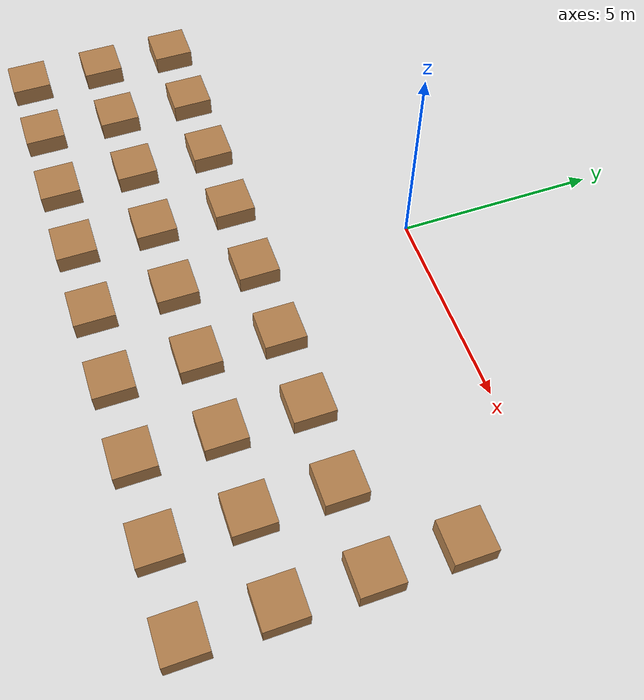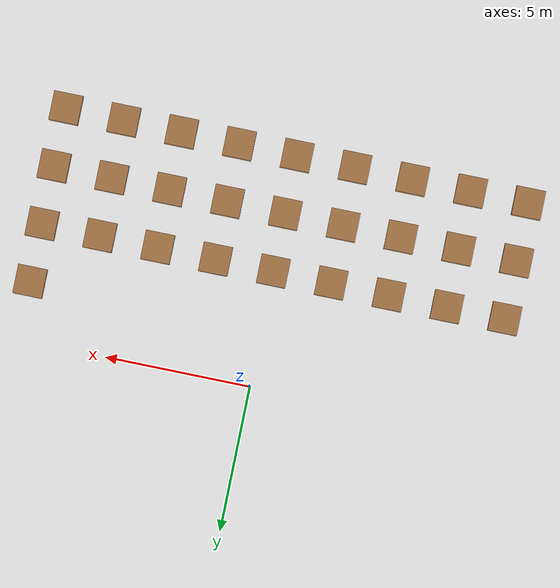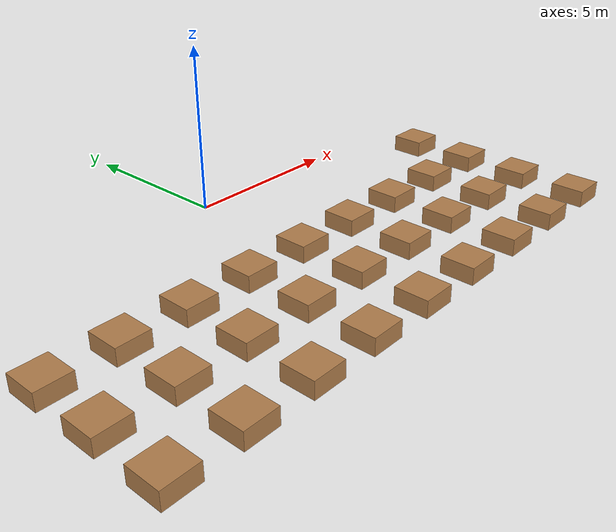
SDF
<sdf version="1.5">
 <model name="clobot_test_map">
  <static>1</static>
  <link name="Box54">
   <collision name="Box54_Collision">
    <pose>8 -2 0.25 0 0 0</pose>
    <geometry><box><size>1 1 0.5</size></box></geometry>
    <surface>
     <friction>
      <ode><mu>1</mu><mu2>1</mu2><fdir1>0 0 0</fdir1><slip1>0</slip1><slip2>0</slip2></ode>
      <torsional>
       <coefficient>1</coefficient>
       <patch_radius>0</patch_radius>
       <surface_radius>0</surface_radius>
       <use_patch_radius>1</use_patch_radius>
       <ode><slip>0</slip></ode>
      </torsional>
     </friction>
     <bounce><restitution_coefficient>0</restitution_coefficient><threshold>1e+06</threshold></bounce>
     <contact>
      <collide_without_contact>0</collide_without_contact>
      <collide_without_contact_bitmask>1</collide_without_contact_bitmask>
      <collide_bitmask>1</collide_bitmask>
      <ode>
       <soft_cfm>0</soft_cfm>
       <soft_erp>0.2</soft_erp>
       <kp>1e+13</kp>
       <kd>1</kd>
       <max_vel>0.01</max_vel>
       <min_depth>0</min_depth>
      </ode>
      <bullet>
       <split_impulse>1</split_impulse>
       <split_impulse_penetration_threshold>-0.01</split_impulse_penetration_threshold>
       <soft_cfm>0</soft_cfm>
       <soft_erp>0.2</soft_erp>
       <kp>1e+13</kp>
       <kd>1</kd>
      </bullet>
     </contact>
    </surface>
   </collision>
   <visual name="Box54_Visual">
    <pose>8 -2 0.25 0 0 0</pose>
    <geometry><box><size>1 1 0.5</size></box></geometry>
    <material><script><name>Gazebo/WoodFloor</name></script></material>
   </visual>
  </link>
  <link name="Box55">
   <collision name="Box55_Collision">
    <pose>-8 -4 0.25 0 0 0</pose>
    <geometry><box><size>1 1 0.5</size></box></geometry>
    <surface>
     <friction>
      <ode><mu>1</mu><mu2>1</mu2><fdir1>0 0 0</fdir1><slip1>0</slip1><slip2>0</slip2></ode>
      <torsional>
       <coefficient>1</coefficient>
       <patch_radius>0</patch_radius>
       <surface_radius>0</surface_radius>
       <use_patch_radius>1</use_patch_radius>
       <ode><slip>0</slip></ode>
      </torsional>
     </friction>
     <bounce><restitution_coefficient>0</restitution_coefficient><threshold>1e+06</threshold></bounce>
     <contact>
      <collide_without_contact>0</collide_without_contact>
      <collide_without_contact_bitmask>1</collide_without_contact_bitmask>
      <collide_bitmask>1</collide_bitmask>
      <ode>
       <soft_cfm>0</soft_cfm>
       <soft_erp>0.2</soft_erp>
       <kp>1e+13</kp>
       <kd>1</kd>
       <max_vel>0.01</max_vel>
       <min_depth>0</min_depth>
      </ode>
      <bullet>
       <split_impulse>1</split_impulse>
       <split_impulse_penetration_threshold>-0.01</split_impulse_penetration_threshold>
       <soft_cfm>0</soft_cfm>
       <soft_erp>0.2</soft_erp>
       <kp>1e+13</kp>
       <kd>1</kd>
      </bullet>
     </contact>
    </surface>
   </collision>
   <visual name="Box55_Visual">
    <pose>-8 -4 0.25 0 0 0</pose>
    <geometry><box><size>1 1 0.5</size></box></geometry>
    <material><script><name>Gazebo/WoodFloor</name></script></material>
   </visual>
  </link>
  <link name="Box56">
   <collision name="Box56_Collision">
    <pose>-6 -4 0.25 0 0 0</pose>
    <geometry><box><size>1 1 0.5</size></box></geometry>
    <surface>
     <friction>
      <ode><mu>1</mu><mu2>1</mu2><fdir1>0 0 0</fdir1><slip1>0</slip1><slip2>0</slip2></ode>
      <torsional>
       <coefficient>1</coefficient>
       <patch_radius>0</patch_radius>
       <surface_radius>0</surface_radius>
       <use_patch_radius>1</use_patch_radius>
       <ode><slip>0</slip></ode>
      </torsional>
     </friction>
     <bounce><restitution_coefficient>0</restitution_coefficient><threshold>1e+06</threshold></bounce>
     <contact>
      <collide_without_contact>0</collide_without_contact>
      <collide_without_contact_bitmask>1</collide_without_contact_bitmask>
      <collide_bitmask>1</collide_bitmask>
      <ode>
       <soft_cfm>0</soft_cfm>
       <soft_erp>0.2</soft_erp>
       <kp>1e+13</kp>
       <kd>1</kd>
       <max_vel>0.01</max_vel>
       <min_depth>0</min_depth>
      </ode>
      <bullet>
       <split_impulse>1</split_impulse>
       <split_impulse_penetration_threshold>-0.01</split_impulse_penetration_threshold>
       <soft_cfm>0</soft_cfm>
       <soft_erp>0.2</soft_erp>
       <kp>1e+13</kp>
       <kd>1</kd>
      </bullet>
     </contact>
    </surface>
   </collision>
   <visual name="Box56_Visual">
    <pose>-6 -4 0.25 0 0 0</pose>
    <geometry><box><size>1 1 0.5</size></box></geometry>
    <material><script><name>Gazebo/WoodFloor</name></script></material>
   </visual>
  </link>
  <link name="Box57">
   <collision name="Box57_Collision">
    <pose>-4 -4 0.25 0 0 0</pose>
    <geometry><box><size>1 1 0.5</size></box></geometry>
    <surface>
     <friction>
      <ode><mu>1</mu><mu2>1</mu2><fdir1>0 0 0</fdir1><slip1>0</slip1><slip2>0</slip2></ode>
      <torsional>
       <coefficient>1</coefficient>
       <patch_radius>0</patch_radius>
       <surface_radius>0</surface_radius>
       <use_patch_radius>1</use_patch_radius>
       <ode><slip>0</slip></ode>
      </torsional>
     </friction>
     <bounce><restitution_coefficient>0</restitution_coefficient><threshold>1e+06</threshold></bounce>
     <contact>
      <collide_without_contact>0</collide_without_contact>
      <collide_without_contact_bitmask>1</collide_without_contact_bitmask>
      <collide_bitmask>1</collide_bitmask>
      <ode>
       <soft_cfm>0</soft_cfm>
       <soft_erp>0.2</soft_erp>
       <kp>1e+13</kp>
       <kd>1</kd>
       <max_vel>0.01</max_vel>
       <min_depth>0</min_depth>
      </ode>
      <bullet>
       <split_impulse>1</split_impulse>
       <split_impulse_penetration_threshold>-0.01</split_impulse_penetration_threshold>
       <soft_cfm>0</soft_cfm>
       <soft_erp>0.2</soft_erp>
       <kp>1e+13</kp>
       <kd>1</kd>
      </bullet>
     </contact>
    </surface>
   </collision>
   <visual name="Box57_Visual">
    <pose>-4 -4 0.25 0 0 0</pose>
    <geometry><box><size>1 1 0.5</size></box></geometry>
    <material><script><name>Gazebo/WoodFloor</name></script></material>
   </visual>
  </link>
  <link name="Box58">
   <collision name="Box58_Collision">
    <pose>-2 -4 0.25 0 0 0</pose>
    <geometry><box><size>1 1 0.5</size></box></geometry>
    <surface>
     <friction>
      <ode><mu>1</mu><mu2>1</mu2><fdir1>0 0 0</fdir1><slip1>0</slip1><slip2>0</slip2></ode>
      <torsional>
       <coefficient>1</coefficient>
       <patch_radius>0</patch_radius>
       <surface_radius>0</surface_radius>
       <use_patch_radius>1</use_patch_radius>
       <ode><slip>0</slip></ode>
      </torsional>
     </friction>
     <bounce><restitution_coefficient>0</restitution_coefficient><threshold>1e+06</threshold></bounce>
     <contact>
      <collide_without_contact>0</collide_without_contact>
      <collide_without_contact_bitmask>1</collide_without_contact_bitmask>
      <collide_bitmask>1</collide_bitmask>
      <ode>
       <soft_cfm>0</soft_cfm>
       <soft_erp>0.2</soft_erp>
       <kp>1e+13</kp>
       <kd>1</kd>
       <max_vel>0.01</max_vel>
       <min_depth>0</min_depth>
      </ode>
      <bullet>
       <split_impulse>1</split_impulse>
       <split_impulse_penetration_threshold>-0.01</split_impulse_penetration_threshold>
       <soft_cfm>0</soft_cfm>
       <soft_erp>0.2</soft_erp>
       <kp>1e+13</kp>
       <kd>1</kd>
      </bullet>
     </contact>
    </surface>
   </collision>
   <visual name="Box58_Visual">
    <pose>-2 -4 0.25 0 0 0</pose>
    <geometry><box><size>1 1 0.5</size></box></geometry>
    <material><script><name>Gazebo/WoodFloor</name></script></material>
   </visual>
  </link>
  <link name="Box59">
   <collision name="Box59_Collision">
    <pose>0 -4 0.25 0 0 0</pose>
    <geometry><box><size>1 1 0.5</size></box></geometry>
    <surface>
     <friction>
      <ode><mu>1</mu><mu2>1</mu2><fdir1>0 0 0</fdir1><slip1>0</slip1><slip2>0</slip2></ode>
      <torsional>
       <coefficient>1</coefficient>
       <patch_radius>0</patch_radius>
       <surface_radius>0</surface_radius>
       <use_patch_radius>1</use_patch_radius>
       <ode><slip>0</slip></ode>
      </torsional>
     </friction>
     <bounce><restitution_coefficient>0</restitution_coefficient><threshold>1e+06</threshold></bounce>
     <contact>
      <collide_without_contact>0</collide_without_contact>
      <collide_without_contact_bitmask>1</collide_without_contact_bitmask>
      <collide_bitmask>1</collide_bitmask>
      <ode>
       <soft_cfm>0</soft_cfm>
       <soft_erp>0.2</soft_erp>
       <kp>1e+13</kp>
       <kd>1</kd>
       <max_vel>0.01</max_vel>
       <min_depth>0</min_depth>
      </ode>
      <bullet>
       <split_impulse>1</split_impulse>
       <split_impulse_penetration_threshold>-0.01</split_impulse_penetration_threshold>
       <soft_cfm>0</soft_cfm>
       <soft_erp>0.2</soft_erp>
       <kp>1e+13</kp>
       <kd>1</kd>
      </bullet>
     </contact>
    </surface>
   </collision>
   <visual name="Box59_Visual">
    <pose>0 -4 0.25 0 0 0</pose>
    <geometry><box><size>1 1 0.5</size></box></geometry>
    <material><script><name>Gazebo/WoodFloor</name></script></material>
   </visual>
  </link>
  <link name="Box60">
   <collision name="Box60_Collision">
    <pose>2 -4 0.25 0 0 0</pose>
    <geometry><box><size>1 1 0.5</size></box></geometry>
    <surface>
     <friction>
      <ode><mu>1</mu><mu2>1</mu2><fdir1>0 0 0</fdir1><slip1>0</slip1><slip2>0</slip2></ode>
      <torsional>
       <coefficient>1</coefficient>
       <patch_radius>0</patch_radius>
       <surface_radius>0</surface_radius>
       <use_patch_radius>1</use_patch_radius>
       <ode><slip>0</slip></ode>
      </torsional>
     </friction>
     <bounce><restitution_coefficient>0</restitution_coefficient><threshold>1e+06</threshold></bounce>
     <contact>
      <collide_without_contact>0</collide_without_contact>
      <collide_without_contact_bitmask>1</collide_without_contact_bitmask>
      <collide_bitmask>1</collide_bitmask>
      <ode>
       <soft_cfm>0</soft_cfm>
       <soft_erp>0.2</soft_erp>
       <kp>1e+13</kp>
       <kd>1</kd>
       <max_vel>0.01</max_vel>
       <min_depth>0</min_depth>
      </ode>
      <bullet>
       <split_impulse>1</split_impulse>
       <split_impulse_penetration_threshold>-0.01</split_impulse_penetration_threshold>
       <soft_cfm>0</soft_cfm>
       <soft_erp>0.2</soft_erp>
       <kp>1e+13</kp>
       <kd>1</kd>
      </bullet>
     </contact>
    </surface>
   </collision>
   <visual name="Box60_Visual">
    <pose>2 -4 0.25 0 0 0</pose>
    <geometry><box><size>1 1 0.5</size></box></geometry>
    <material><script><name>Gazebo/WoodFloor</name></script></material>
   </visual>
  </link>
  <link name="Box61">
   <collision name="Box61_Collision">
    <pose>4 -4 0.25 0 0 0</pose>
    <geometry><box><size>1 1 0.5</size></box></geometry>
    <surface>
     <friction>
      <ode><mu>1</mu><mu2>1</mu2><fdir1>0 0 0</fdir1><slip1>0</slip1><slip2>0</slip2></ode>
      <torsional>
       <coefficient>1</coefficient>
       <patch_radius>0</patch_radius>
       <surface_radius>0</surface_radius>
       <use_patch_radius>1</use_patch_radius>
       <ode><slip>0</slip></ode>
      </torsional>
     </friction>
     <bounce><restitution_coefficient>0</restitution_coefficient><threshold>1e+06</threshold></bounce>
     <contact>
      <collide_without_contact>0</collide_without_contact>
      <collide_without_contact_bitmask>1</collide_without_contact_bitmask>
      <collide_bitmask>1</collide_bitmask>
      <ode>
       <soft_cfm>0</soft_cfm>
       <soft_erp>0.2</soft_erp>
       <kp>1e+13</kp>
       <kd>1</kd>
       <max_vel>0.01</max_vel>
       <min_depth>0</min_depth>
      </ode>
      <bullet>
       <split_impulse>1</split_impulse>
       <split_impulse_penetration_threshold>-0.01</split_impulse_penetration_threshold>
       <soft_cfm>0</soft_cfm>
       <soft_erp>0.2</soft_erp>
       <kp>1e+13</kp>
       <kd>1</kd>
      </bullet>
     </contact>
    </surface>
   </collision>
   <visual name="Box61_Visual">
    <pose>4 -4 0.25 0 0 0</pose>
    <geometry><box><size>1 1 0.5</size></box></geometry>
    <material><script><name>Gazebo/WoodFloor</name></script></material>
   </visual>
  </link>
  <link name="Box62">
   <collision name="Box62_Collision">
    <pose>6 -4 0.25 0 0 0</pose>
    <geometry><box><size>1 1 0.5</size></box></geometry>
    <surface>
     <friction>
      <ode><mu>1</mu><mu2>1</mu2><fdir1>0 0 0</fdir1><slip1>0</slip1><slip2>0</slip2></ode>
      <torsional>
       <coefficient>1</coefficient>
       <patch_radius>0</patch_radius>
       <surface_radius>0</surface_radius>
       <use_patch_radius>1</use_patch_radius>
       <ode><slip>0</slip></ode>
      </torsional>
     </friction>
     <bounce><restitution_coefficient>0</restitution_coefficient><threshold>1e+06</threshold></bounce>
     <contact>
      <collide_without_contact>0</collide_without_contact>
      <collide_without_contact_bitmask>1</collide_without_contact_bitmask>
      <collide_bitmask>1</collide_bitmask>
      <ode>
       <soft_cfm>0</soft_cfm>
       <soft_erp>0.2</soft_erp>
       <kp>1e+13</kp>
       <kd>1</kd>
       <max_vel>0.01</max_vel>
       <min_depth>0</min_depth>
      </ode>
      <bullet>
       <split_impulse>1</split_impulse>
       <split_impulse_penetration_threshold>-0.01</split_impulse_penetration_threshold>
       <soft_cfm>0</soft_cfm>
       <soft_erp>0.2</soft_erp>
       <kp>1e+13</kp>
       <kd>1</kd>
      </bullet>
     </contact>
    </surface>
   </collision>
   <visual name="Box62_Visual">
    <pose>6 -4 0.25 0 0 0</pose>
    <geometry><box><size>1 1 0.5</size></box></geometry>
    <material><script><name>Gazebo/WoodFloor</name></script></material>
   </visual>
  </link>
  <link name="Box63">
   <collision name="Box63_Collision">
    <pose>8 -4 0.25 0 0 0</pose>
    <geometry><box><size>1 1 0.5</size></box></geometry>
    <surface>
     <friction>
      <ode><mu>1</mu><mu2>1</mu2><fdir1>0 0 0</fdir1><slip1>0</slip1><slip2>0</slip2></ode>
      <torsional>
       <coefficient>1</coefficient>
       <patch_radius>0</patch_radius>
       <surface_radius>0</surface_radius>
       <use_patch_radius>1</use_patch_radius>
       <ode><slip>0</slip></ode>
      </torsional>
     </friction>
     <bounce><restitution_coefficient>0</restitution_coefficient><threshold>1e+06</threshold></bounce>
     <contact>
      <collide_without_contact>0</collide_without_contact>
      <collide_without_contact_bitmask>1</collide_without_contact_bitmask>
      <collide_bitmask>1</collide_bitmask>
      <ode>
       <soft_cfm>0</soft_cfm>
       <soft_erp>0.2</soft_erp>
       <kp>1e+13</kp>
       <kd>1</kd>
       <max_vel>0.01</max_vel>
       <min_depth>0</min_depth>
      </ode>
      <bullet>
       <split_impulse>1</split_impulse>
       <split_impulse_penetration_threshold>-0.01</split_impulse_penetration_threshold>
       <soft_cfm>0</soft_cfm>
       <soft_erp>0.2</soft_erp>
       <kp>1e+13</kp>
       <kd>1</kd>
      </bullet>
     </contact>
    </surface>
   </collision>
   <visual name="Box63_Visual">
    <pose>8 -4 0.25 0 0 0</pose>
    <geometry><box><size>1 1 0.5</size></box></geometry>
    <material><script><name>Gazebo/WoodFloor</name></script></material>
   </visual>
  </link>
  <link name="Box64">
   <collision name="Box64_Collision">
    <pose>-8 -6 0.25 0 0 0</pose>
    <geometry><box><size>1 1 0.5</size></box></geometry>
    <surface>
     <friction>
      <ode><mu>1</mu><mu2>1</mu2><fdir1>0 0 0</fdir1><slip1>0</slip1><slip2>0</slip2></ode>
      <torsional>
       <coefficient>1</coefficient>
       <patch_radius>0</patch_radius>
       <surface_radius>0</surface_radius>
       <use_patch_radius>1</use_patch_radius>
       <ode><slip>0</slip></ode>
      </torsional>
     </friction>
     <bounce><restitution_coefficient>0</restitution_coefficient><threshold>1e+06</threshold></bounce>
     <contact>
      <collide_without_contact>0</collide_without_contact>
      <collide_without_contact_bitmask>1</collide_without_contact_bitmask>
      <collide_bitmask>1</collide_bitmask>
      <ode>
       <soft_cfm>0</soft_cfm>
       <soft_erp>0.2</soft_erp>
       <kp>1e+13</kp>
       <kd>1</kd>
       <max_vel>0.01</max_vel>
       <min_depth>0</min_depth>
      </ode>
      <bullet>
       <split_impulse>1</split_impulse>
       <split_impulse_penetration_threshold>-0.01</split_impulse_penetration_threshold>
       <soft_cfm>0</soft_cfm>
       <soft_erp>0.2</soft_erp>
       <kp>1e+13</kp>
       <kd>1</kd>
      </bullet>
     </contact>
    </surface>
   </collision>
   <visual name="Box64_Visual">
    <pose>-8 -6 0.25 0 0 0</pose>
    <geometry><box><size>1 1 0.5</size></box></geometry>
    <material><script><name>Gazebo/WoodFloor</name></script></material>
   </visual>
  </link>
  <link name="Box65">
   <collision name="Box65_Collision">
    <pose>-6 -6 0.25 0 0 0</pose>
    <geometry><box><size>1 1 0.5</size></box></geometry>
    <surface>
     <friction>
      <ode><mu>1</mu><mu2>1</mu2><fdir1>0 0 0</fdir1><slip1>0</slip1><slip2>0</slip2></ode>
      <torsional>
       <coefficient>1</coefficient>
       <patch_radius>0</patch_radius>
       <surface_radius>0</surface_radius>
       <use_patch_radius>1</use_patch_radius>
       <ode><slip>0</slip></ode>
      </torsional>
     </friction>
     <bounce><restitution_coefficient>0</restitution_coefficient><threshold>1e+06</threshold></bounce>
     <contact>
      <collide_without_contact>0</collide_without_contact>
      <collide_without_contact_bitmask>1</collide_without_contact_bitmask>
      <collide_bitmask>1</collide_bitmask>
      <ode>
       <soft_cfm>0</soft_cfm>
       <soft_erp>0.2</soft_erp>
       <kp>1e+13</kp>
       <kd>1</kd>
       <max_vel>0.01</max_vel>
       <min_depth>0</min_depth>
      </ode>
      <bullet>
       <split_impulse>1</split_impulse>
       <split_impulse_penetration_threshold>-0.01</split_impulse_penetration_threshold>
       <soft_cfm>0</soft_cfm>
       <soft_erp>0.2</soft_erp>
       <kp>1e+13</kp>
       <kd>1</kd>
      </bullet>
     </contact>
    </surface>
   </collision>
   <visual name="Box65_Visual">
    <pose>-6 -6 0.25 0 0 0</pose>
    <geometry><box><size>1 1 0.5</size></box></geometry>
    <material><script><name>Gazebo/WoodFloor</name></script></material>
   </visual>
  </link>
  <link name="Box66">
   <collision name="Box66_Collision">
    <pose>-4 -6 0.25 0 0 0</pose>
    <geometry><box><size>1 1 0.5</size></box></geometry>
    <surface>
     <friction>
      <ode><mu>1</mu><mu2>1</mu2><fdir1>0 0 0</fdir1><slip1>0</slip1><slip2>0</slip2></ode>
      <torsional>
       <coefficient>1</coefficient>
       <patch_radius>0</patch_radius>
       <surface_radius>0</surface_radius>
       <use_patch_radius>1</use_patch_radius>
       <ode><slip>0</slip></ode>
      </torsional>
     </friction>
     <bounce><restitution_coefficient>0</restitution_coefficient><threshold>1e+06</threshold></bounce>
     <contact>
      <collide_without_contact>0</collide_without_contact>
      <collide_without_contact_bitmask>1</collide_without_contact_bitmask>
      <collide_bitmask>1</collide_bitmask>
      <ode>
       <soft_cfm>0</soft_cfm>
       <soft_erp>0.2</soft_erp>
       <kp>1e+13</kp>
       <kd>1</kd>
       <max_vel>0.01</max_vel>
       <min_depth>0</min_depth>
      </ode>
      <bullet>
       <split_impulse>1</split_impulse>
       <split_impulse_penetration_threshold>-0.01</split_impulse_penetration_threshold>
       <soft_cfm>0</soft_cfm>
       <soft_erp>0.2</soft_erp>
       <kp>1e+13</kp>
       <kd>1</kd>
      </bullet>
     </contact>
    </surface>
   </collision>
   <visual name="Box66_Visual">
    <pose>-4 -6 0.25 0 0 0</pose>
    <geometry><box><size>1 1 0.5</size></box></geometry>
    <material><script><name>Gazebo/WoodFloor</name></script></material>
   </visual>
  </link>
  <link name="Box67">
   <collision name="Box67_Collision">
    <pose>-2 -6 0.25 0 0 0</pose>
    <geometry><box><size>1 1 0.5</size></box></geometry>
    <surface>
     <friction>
      <ode><mu>1</mu><mu2>1</mu2><fdir1>0 0 0</fdir1><slip1>0</slip1><slip2>0</slip2></ode>
      <torsional>
       <coefficient>1</coefficient>
       <patch_radius>0</patch_radius>
       <surface_radius>0</surface_radius>
       <use_patch_radius>1</use_patch_radius>
       <ode><slip>0</slip></ode>
      </torsional>
     </friction>
     <bounce><restitution_coefficient>0</restitution_coefficient><threshold>1e+06</threshold></bounce>
     <contact>
      <collide_without_contact>0</collide_without_contact>
      <collide_without_contact_bitmask>1</collide_without_contact_bitmask>
      <collide_bitmask>1</collide_bitmask>
      <ode>
       <soft_cfm>0</soft_cfm>
       <soft_erp>0.2</soft_erp>
       <kp>1e+13</kp>
       <kd>1</kd>
       <max_vel>0.01</max_vel>
       <min_depth>0</min_depth>
      </ode>
      <bullet>
       <split_impulse>1</split_impulse>
       <split_impulse_penetration_threshold>-0.01</split_impulse_penetration_threshold>
       <soft_cfm>0</soft_cfm>
       <soft_erp>0.2</soft_erp>
       <kp>1e+13</kp>
       <kd>1</kd>
      </bullet>
     </contact>
    </surface>
   </collision>
   <visual name="Box67_Visual">
    <pose>-2 -6 0.25 0 0 0</pose>
    <geometry><box><size>1 1 0.5</size></box></geometry>
    <material><script><name>Gazebo/WoodFloor</name></script></material>
   </visual>
  </link>
  <link name="Box68">
   <collision name="Box68_Collision">
    <pose>0 -6 0.25 0 0 0</pose>
    <geometry><box><size>1 1 0.5</size></box></geometry>
    <surface>
     <friction>
      <ode><mu>1</mu><mu2>1</mu2><fdir1>0 0 0</fdir1><slip1>0</slip1><slip2>0</slip2></ode>
      <torsional>
       <coefficient>1</coefficient>
       <patch_radius>0</patch_radius>
       <surface_radius>0</surface_radius>
       <use_patch_radius>1</use_patch_radius>
       <ode><slip>0</slip></ode>
      </torsional>
     </friction>
     <bounce><restitution_coefficient>0</restitution_coefficient><threshold>1e+06</threshold></bounce>
     <contact>
      <collide_without_contact>0</collide_without_contact>
      <collide_without_contact_bitmask>1</collide_without_contact_bitmask>
      <collide_bitmask>1</collide_bitmask>
      <ode>
       <soft_cfm>0</soft_cfm>
       <soft_erp>0.2</soft_erp>
       <kp>1e+13</kp>
       <kd>1</kd>
       <max_vel>0.01</max_vel>
       <min_depth>0</min_depth>
      </ode>
      <bullet>
       <split_impulse>1</split_impulse>
       <split_impulse_penetration_threshold>-0.01</split_impulse_penetration_threshold>
       <soft_cfm>0</soft_cfm>
       <soft_erp>0.2</soft_erp>
       <kp>1e+13</kp>
       <kd>1</kd>
      </bullet>
     </contact>
    </surface>
   </collision>
   <visual name="Box68_Visual">
    <pose>0 -6 0.25 0 0 0</pose>
    <geometry><box><size>1 1 0.5</size></box></geometry>
    <material><script><name>Gazebo/WoodFloor</name></script></material>
   </visual>
  </link>
  <link name="Box69">
   <collision name="Box69_Collision">
    <pose>2 -6 0.25 0 0 0</pose>
    <geometry><box><size>1 1 0.5</size></box></geometry>
    <surface>
     <friction>
      <ode><mu>1</mu><mu2>1</mu2><fdir1>0 0 0</fdir1><slip1>0</slip1><slip2>0</slip2></ode>
      <torsional>
       <coefficient>1</coefficient>
       <patch_radius>0</patch_radius>
       <surface_radius>0</surface_radius>
       <use_patch_radius>1</use_patch_radius>
       <ode><slip>0</slip></ode>
      </torsional>
     </friction>
     <bounce><restitution_coefficient>0</restitution_coefficient><threshold>1e+06</threshold></bounce>
     <contact>
      <collide_without_contact>0</collide_without_contact>
      <collide_without_contact_bitmask>1</collide_without_contact_bitmask>
      <collide_bitmask>1</collide_bitmask>
      <ode>
       <soft_cfm>0</soft_cfm>
       <soft_erp>0.2</soft_erp>
       <kp>1e+13</kp>
       <kd>1</kd>
       <max_vel>0.01</max_vel>
       <min_depth>0</min_depth>
      </ode>
      <bullet>
       <split_impulse>1</split_impulse>
       <split_impulse_penetration_threshold>-0.01</split_impulse_penetration_threshold>
       <soft_cfm>0</soft_cfm>
       <soft_erp>0.2</soft_erp>
       <kp>1e+13</kp>
       <kd>1</kd>
      </bullet>
     </contact>
    </surface>
   </collision>
   <visual name="Box69_Visual">
    <pose>2 -6 0.25 0 0 0</pose>
    <geometry><box><size>1 1 0.5</size></box></geometry>
    <material><script><name>Gazebo/WoodFloor</name></script></material>
   </visual>
  </link>
  <link name="Box70">
   <collision name="Box70_Collision">
    <pose>4 -6 0.25 0 0 0</pose>
    <geometry><box><size>1 1 0.5</size></box></geometry>
    <surface>
     <friction>
      <ode><mu>1</mu><mu2>1</mu2><fdir1>0 0 0</fdir1><slip1>0</slip1><slip2>0</slip2></ode>
      <torsional>
       <coefficient>1</coefficient>
       <patch_radius>0</patch_radius>
       <surface_radius>0</surface_radius>
       <use_patch_radius>1</use_patch_radius>
       <ode><slip>0</slip></ode>
      </torsional>
     </friction>
     <bounce><restitution_coefficient>0</restitution_coefficient><threshold>1e+06</threshold></bounce>
     <contact>
      <collide_without_contact>0</collide_without_contact>
      <collide_without_contact_bitmask>1</collide_without_contact_bitmask>
      <collide_bitmask>1</collide_bitmask>
      <ode>
       <soft_cfm>0</soft_cfm>
       <soft_erp>0.2</soft_erp>
       <kp>1e+13</kp>
       <kd>1</kd>
       <max_vel>0.01</max_vel>
       <min_depth>0</min_depth>
      </ode>
      <bullet>
       <split_impulse>1</split_impulse>
       <split_impulse_penetration_threshold>-0.01</split_impulse_penetration_threshold>
       <soft_cfm>0</soft_cfm>
       <soft_erp>0.2</soft_erp>
       <kp>1e+13</kp>
       <kd>1</kd>
      </bullet>
     </contact>
    </surface>
   </collision>
   <visual name="Box70_Visual">
    <pose>4 -6 0.25 0 0 0</pose>
    <geometry><box><size>1 1 0.5</size></box></geometry>
    <material><script><name>Gazebo/WoodFloor</name></script></material>
   </visual>
  </link>
  <link name="Box71">
   <collision name="Box71_Collision">
    <pose>6 -6 0.25 0 0 0</pose>
    <geometry><box><size>1 1 0.5</size></box></geometry>
    <surface>
     <friction>
      <ode><mu>1</mu><mu2>1</mu2><fdir1>0 0 0</fdir1><slip1>0</slip1><slip2>0</slip2></ode>
      <torsional>
       <coefficient>1</coefficient>
       <patch_radius>0</patch_radius>
       <surface_radius>0</surface_radius>
       <use_patch_radius>1</use_patch_radius>
       <ode><slip>0</slip></ode>
      </torsional>
     </friction>
     <bounce><restitution_coefficient>0</restitution_coefficient><threshold>1e+06</threshold></bounce>
     <contact>
      <collide_without_contact>0</collide_without_contact>
      <collide_without_contact_bitmask>1</collide_without_contact_bitmask>
      <collide_bitmask>1</collide_bitmask>
      <ode>
       <soft_cfm>0</soft_cfm>
       <soft_erp>0.2</soft_erp>
       <kp>1e+13</kp>
       <kd>1</kd>
       <max_vel>0.01</max_vel>
       <min_depth>0</min_depth>
      </ode>
      <bullet>
       <split_impulse>1</split_impulse>
       <split_impulse_penetration_threshold>-0.01</split_impulse_penetration_threshold>
       <soft_cfm>0</soft_cfm>
       <soft_erp>0.2</soft_erp>
       <kp>1e+13</kp>
       <kd>1</kd>
      </bullet>
     </contact>
    </surface>
   </collision>
   <visual name="Box71_Visual">
    <pose>6 -6 0.25 0 0 0</pose>
    <geometry><box><size>1 1 0.5</size></box></geometry>
    <material><script><name>Gazebo/WoodFloor</name></script></material>
   </visual>
  </link>
  <link name="Box72">
   <collision name="Box72_Collision">
    <pose>8 -6 0.25 0 0 0</pose>
    <geometry><box><size>1 1 0.5</size></box></geometry>
    <surface>
     <friction>
      <ode><mu>1</mu><mu2>1</mu2><fdir1>0 0 0</fdir1><slip1>0</slip1><slip2>0</slip2></ode>
      <torsional>
       <coefficient>1</coefficient>
       <patch_radius>0</patch_radius>
       <surface_radius>0</surface_radius>
       <use_patch_radius>1</use_patch_radius>
       <ode><slip>0</slip></ode>
      </torsional>
     </friction>
     <bounce><restitution_coefficient>0</restitution_coefficient><threshold>1e+06</threshold></bounce>
     <contact>
      <collide_without_contact>0</collide_without_contact>
      <collide_without_contact_bitmask>1</collide_without_contact_bitmask>
      <collide_bitmask>1</collide_bitmask>
      <ode>
       <soft_cfm>0</soft_cfm>
       <soft_erp>0.2</soft_erp>
       <kp>1e+13</kp>
       <kd>1</kd>
       <max_vel>0.01</max_vel>
       <min_depth>0</min_depth>
      </ode>
      <bullet>
       <split_impulse>1</split_impulse>
       <split_impulse_penetration_threshold>-0.01</split_impulse_penetration_threshold>
       <soft_cfm>0</soft_cfm>
       <soft_erp>0.2</soft_erp>
       <kp>1e+13</kp>
       <kd>1</kd>
      </bullet>
     </contact>
    </surface>
   </collision>
   <visual name="Box72_Visual">
    <pose>8 -6 0.25 0 0 0</pose>
    <geometry><box><size>1 1 0.5</size></box></geometry>
    <material><script><name>Gazebo/WoodFloor</name></script></material>
   </visual>
  </link>
  <link name="Box73">
   <collision name="Box73_Collision">
    <pose>-8 -8 0.25 0 0 0</pose>
    <geometry><box><size>1 1 0.5</size></box></geometry>
    <surface>
     <friction>
      <ode><mu>1</mu><mu2>1</mu2><fdir1>0 0 0</fdir1><slip1>0</slip1><slip2>0</slip2></ode>
      <torsional>
       <coefficient>1</coefficient>
       <patch_radius>0</patch_radius>
       <surface_radius>0</surface_radius>
       <use_patch_radius>1</use_patch_radius>
       <ode><slip>0</slip></ode>
      </torsional>
     </friction>
     <bounce><restitution_coefficient>0</restitution_coefficient><threshold>1e+06</threshold></bounce>
     <contact>
      <collide_without_contact>0</collide_without_contact>
      <collide_without_contact_bitmask>1</collide_without_contact_bitmask>
      <collide_bitmask>1</collide_bitmask>
      <ode>
       <soft_cfm>0</soft_cfm>
       <soft_erp>0.2</soft_erp>
       <kp>1e+13</kp>
       <kd>1</kd>
       <max_vel>0.01</max_vel>
       <min_depth>0</min_depth>
      </ode>
      <bullet>
       <split_impulse>1</split_impulse>
       <split_impulse_penetration_threshold>-0.01</split_impulse_penetration_threshold>
       <soft_cfm>0</soft_cfm>
       <soft_erp>0.2</soft_erp>
       <kp>1e+13</kp>
       <kd>1</kd>
      </bullet>
     </contact>
    </surface>
   </collision>
   <visual name="Box73_Visual">
    <pose>-8 -8 0.25 0 0 0</pose>
    <geometry><box><size>1 1 0.5</size></box></geometry>
    <material><script><name>Gazebo/WoodFloor</name></script></material>
   </visual>
  </link>
  <link name="Box74">
   <collision name="Box74_Collision">
    <pose>-6 -8 0.25 0 0 0</pose>
    <geometry><box><size>1 1 0.5</size></box></geometry>
    <surface>
     <friction>
      <ode><mu>1</mu><mu2>1</mu2><fdir1>0 0 0</fdir1><slip1>0</slip1><slip2>0</slip2></ode>
      <torsional>
       <coefficient>1</coefficient>
       <patch_radius>0</patch_radius>
       <surface_radius>0</surface_radius>
       <use_patch_radius>1</use_patch_radius>
       <ode><slip>0</slip></ode>
      </torsional>
     </friction>
     <bounce><restitution_coefficient>0</restitution_coefficient><threshold>1e+06</threshold></bounce>
     <contact>
      <collide_without_contact>0</collide_without_contact>
      <collide_without_contact_bitmask>1</collide_without_contact_bitmask>
      <collide_bitmask>1</collide_bitmask>
      <ode>
       <soft_cfm>0</soft_cfm>
       <soft_erp>0.2</soft_erp>
       <kp>1e+13</kp>
       <kd>1</kd>
       <max_vel>0.01</max_vel>
       <min_depth>0</min_depth>
      </ode>
      <bullet>
       <split_impulse>1</split_impulse>
       <split_impulse_penetration_threshold>-0.01</split_impulse_penetration_threshold>
       <soft_cfm>0</soft_cfm>
       <soft_erp>0.2</soft_erp>
       <kp>1e+13</kp>
       <kd>1</kd>
      </bullet>
     </contact>
    </surface>
   </collision>
   <visual name="Box74_Visual">
    <pose>-6 -8 0.25 0 0 0</pose>
    <geometry><box><size>1 1 0.5</size></box></geometry>
    <material><script><name>Gazebo/WoodFloor</name></script></material>
   </visual>
  </link>
  <link name="Box75">
   <collision name="Box75_Collision">
    <pose>-4 -8 0.25 0 0 0</pose>
    <geometry><box><size>1 1 0.5</size></box></geometry>
    <surface>
     <friction>
      <ode><mu>1</mu><mu2>1</mu2><fdir1>0 0 0</fdir1><slip1>0</slip1><slip2>0</slip2></ode>
      <torsional>
       <coefficient>1</coefficient>
       <patch_radius>0</patch_radius>
       <surface_radius>0</surface_radius>
       <use_patch_radius>1</use_patch_radius>
       <ode><slip>0</slip></ode>
      </torsional>
     </friction>
     <bounce><restitution_coefficient>0</restitution_coefficient><threshold>1e+06</threshold></bounce>
     <contact>
      <collide_without_contact>0</collide_without_contact>
      <collide_without_contact_bitmask>1</collide_without_contact_bitmask>
      <collide_bitmask>1</collide_bitmask>
      <ode>
       <soft_cfm>0</soft_cfm>
       <soft_erp>0.2</soft_erp>
       <kp>1e+13</kp>
       <kd>1</kd>
       <max_vel>0.01</max_vel>
       <min_depth>0</min_depth>
      </ode>
      <bullet>
       <split_impulse>1</split_impulse>
       <split_impulse_penetration_threshold>-0.01</split_impulse_penetration_threshold>
       <soft_cfm>0</soft_cfm>
       <soft_erp>0.2</soft_erp>
       <kp>1e+13</kp>
       <kd>1</kd>
      </bullet>
     </contact>
    </surface>
   </collision>
   <visual name="Box75_Visual">
    <pose>-4 -8 0.25 0 0 0</pose>
    <geometry><box><size>1 1 0.5</size></box></geometry>
    <material><script><name>Gazebo/WoodFloor</name></script></material>
   </visual>
  </link>
  <link name="Box76">
   <collision name="Box76_Collision">
    <pose>-2 -8 0.25 0 0 0</pose>
    <geometry><box><size>1 1 0.5</size></box></geometry>
    <surface>
     <friction>
      <ode><mu>1</mu><mu2>1</mu2><fdir1>0 0 0</fdir1><slip1>0</slip1><slip2>0</slip2></ode>
      <torsional>
       <coefficient>1</coefficient>
       <patch_radius>0</patch_radius>
       <surface_radius>0</surface_radius>
       <use_patch_radius>1</use_patch_radius>
       <ode><slip>0</slip></ode>
      </torsional>
     </friction>
     <bounce><restitution_coefficient>0</restitution_coefficient><threshold>1e+06</threshold></bounce>
     <contact>
      <collide_without_contact>0</collide_without_contact>
      <collide_without_contact_bitmask>1</collide_without_contact_bitmask>
      <collide_bitmask>1</collide_bitmask>
      <ode>
       <soft_cfm>0</soft_cfm>
       <soft_erp>0.2</soft_erp>
       <kp>1e+13</kp>
       <kd>1</kd>
       <max_vel>0.01</max_vel>
       <min_depth>0</min_depth>
      </ode>
      <bullet>
       <split_impulse>1</split_impulse>
       <split_impulse_penetration_threshold>-0.01</split_impulse_penetration_threshold>
       <soft_cfm>0</soft_cfm>
       <soft_erp>0.2</soft_erp>
       <kp>1e+13</kp>
       <kd>1</kd>
      </bullet>
     </contact>
    </surface>
   </collision>
   <visual name="Box76_Visual">
    <pose>-2 -8 0.25 0 0 0</pose>
    <geometry><box><size>1 1 0.5</size></box></geometry>
    <material><script><name>Gazebo/WoodFloor</name></script></material>
   </visual>
  </link>
  <link name="Box77">
   <collision name="Box77_Collision">
    <pose>0 -8 0.25 0 0 0</pose>
    <geometry><box><size>1 1 0.5</size></box></geometry>
    <surface>
     <friction>
      <ode><mu>1</mu><mu2>1</mu2><fdir1>0 0 0</fdir1><slip1>0</slip1><slip2>0</slip2></ode>
      <torsional>
       <coefficient>1</coefficient>
       <patch_radius>0</patch_radius>
       <surface_radius>0</surface_radius>
       <use_patch_radius>1</use_patch_radius>
       <ode><slip>0</slip></ode>
      </torsional>
     </friction>
     <bounce><restitution_coefficient>0</restitution_coefficient><threshold>1e+06</threshold></bounce>
     <contact>
      <collide_without_contact>0</collide_without_contact>
      <collide_without_contact_bitmask>1</collide_without_contact_bitmask>
      <collide_bitmask>1</collide_bitmask>
      <ode>
       <soft_cfm>0</soft_cfm>
       <soft_erp>0.2</soft_erp>
       <kp>1e+13</kp>
       <kd>1</kd>
       <max_vel>0.01</max_vel>
       <min_depth>0</min_depth>
      </ode>
      <bullet>
       <split_impulse>1</split_impulse>
       <split_impulse_penetration_threshold>-0.01</split_impulse_penetration_threshold>
       <soft_cfm>0</soft_cfm>
       <soft_erp>0.2</soft_erp>
       <kp>1e+13</kp>
       <kd>1</kd>
      </bullet>
     </contact>
    </surface>
   </collision>
   <visual name="Box77_Visual">
    <pose>0 -8 0.25 0 0 0</pose>
    <geometry><box><size>1 1 0.5</size></box></geometry>
    <material><script><name>Gazebo/WoodFloor</name></script></material>
   </visual>
  </link>
  <link name="Box78">
   <collision name="Box78_Collision">
    <pose>2 -8 0.25 0 0 0</pose>
    <geometry><box><size>1 1 0.5</size></box></geometry>
    <surface>
     <friction>
      <ode><mu>1</mu><mu2>1</mu2><fdir1>0 0 0</fdir1><slip1>0</slip1><slip2>0</slip2></ode>
      <torsional>
       <coefficient>1</coefficient>
       <patch_radius>0</patch_radius>
       <surface_radius>0</surface_radius>
       <use_patch_radius>1</use_patch_radius>
       <ode><slip>0</slip></ode>
      </torsional>
     </friction>
     <bounce><restitution_coefficient>0</restitution_coefficient><threshold>1e+06</threshold></bounce>
     <contact>
      <collide_without_contact>0</collide_without_contact>
      <collide_without_contact_bitmask>1</collide_without_contact_bitmask>
      <collide_bitmask>1</collide_bitmask>
      <ode>
       <soft_cfm>0</soft_cfm>
       <soft_erp>0.2</soft_erp>
       <kp>1e+13</kp>
       <kd>1</kd>
       <max_vel>0.01</max_vel>
       <min_depth>0</min_depth>
      </ode>
      <bullet>
       <split_impulse>1</split_impulse>
       <split_impulse_penetration_threshold>-0.01</split_impulse_penetration_threshold>
       <soft_cfm>0</soft_cfm>
       <soft_erp>0.2</soft_erp>
       <kp>1e+13</kp>
       <kd>1</kd>
      </bullet>
     </contact>
    </surface>
   </collision>
   <visual name="Box78_Visual">
    <pose>2 -8 0.25 0 0 0</pose>
    <geometry><box><size>1 1 0.5</size></box></geometry>
    <material><script><name>Gazebo/WoodFloor</name></script></material>
   </visual>
  </link>
  <link name="Box79">
   <collision name="Box79_Collision">
    <pose>4 -8 0.25 0 0 0</pose>
    <geometry><box><size>1 1 0.5</size></box></geometry>
    <surface>
     <friction>
      <ode><mu>1</mu><mu2>1</mu2><fdir1>0 0 0</fdir1><slip1>0</slip1><slip2>0</slip2></ode>
      <torsional>
       <coefficient>1</coefficient>
       <patch_radius>0</patch_radius>
       <surface_radius>0</surface_radius>
       <use_patch_radius>1</use_patch_radius>
       <ode><slip>0</slip></ode>
      </torsional>
     </friction>
     <bounce><restitution_coefficient>0</restitution_coefficient><threshold>1e+06</threshold></bounce>
     <contact>
      <collide_without_contact>0</collide_without_contact>
      <collide_without_contact_bitmask>1</collide_without_contact_bitmask>
      <collide_bitmask>1</collide_bitmask>
      <ode>
       <soft_cfm>0</soft_cfm>
       <soft_erp>0.2</soft_erp>
       <kp>1e+13</kp>
       <kd>1</kd>
       <max_vel>0.01</max_vel>
       <min_depth>0</min_depth>
      </ode>
      <bullet>
       <split_impulse>1</split_impulse>
       <split_impulse_penetration_threshold>-0.01</split_impulse_penetration_threshold>
       <soft_cfm>0</soft_cfm>
       <soft_erp>0.2</soft_erp>
       <kp>1e+13</kp>
       <kd>1</kd>
      </bullet>
     </contact>
    </surface>
   </collision>
   <visual name="Box49_Visual">
    <pose>4 -8 0.25 0 0 0</pose>
    <geometry><box><size>1 1 0.5</size></box></geometry>
    <material><script><name>Gazebo/WoodFloor</name></script></material>
   </visual>
  </link>
  <link name="Box80">
   <collision name="Box80_Collision">
    <pose>6 -8 0.25 0 0 0</pose>
    <geometry><box><size>1 1 0.5</size></box></geometry>
    <surface>
     <friction>
      <ode><mu>1</mu><mu2>1</mu2><fdir1>0 0 0</fdir1><slip1>0</slip1><slip2>0</slip2></ode>
      <torsional>
       <coefficient>1</coefficient>
       <patch_radius>0</patch_radius>
       <surface_radius>0</surface_radius>
       <use_patch_radius>1</use_patch_radius>
       <ode><slip>0</slip></ode>
      </torsional>
     </friction>
     <bounce><restitution_coefficient>0</restitution_coefficient><threshold>1e+06</threshold></bounce>
     <contact>
      <collide_without_contact>0</collide_without_contact>
      <collide_without_contact_bitmask>1</collide_without_contact_bitmask>
      <collide_bitmask>1</collide_bitmask>
      <ode>
       <soft_cfm>0</soft_cfm>
       <soft_erp>0.2</soft_erp>
       <kp>1e+13</kp>
       <kd>1</kd>
       <max_vel>0.01</max_vel>
       <min_depth>0</min_depth>
      </ode>
      <bullet>
       <split_impulse>1</split_impulse>
       <split_impulse_penetration_threshold>-0.01</split_impulse_penetration_threshold>
       <soft_cfm>0</soft_cfm>
       <soft_erp>0.2</soft_erp>
       <kp>1e+13</kp>
       <kd>1</kd>
      </bullet>
     </contact>
    </surface>
   </collision>
   <visual name="Box80_Visual">
    <pose>6 -8 0.25 0 0 0</pose>
    <geometry><box><size>1 1 0.5</size></box></geometry>
    <material><script><name>Gazebo/WoodFloor</name></script></material>
   </visual>
  </link>
  <link name="Box81">
   <collision name="Box81_Collision">
    <pose>8 -8 0.25 0 0 0</pose>
    <geometry><box><size>1 1 0.5</size></box></geometry>
    <surface>
     <friction>
      <ode><mu>1</mu><mu2>1</mu2><fdir1>0 0 0</fdir1><slip1>0</slip1><slip2>0</slip2></ode>
      <torsional>
       <coefficient>1</coefficient>
       <patch_radius>0</patch_radius>
       <surface_radius>0</surface_radius>
       <use_patch_radius>1</use_patch_radius>
       <ode><slip>0</slip></ode>
      </torsional>
     </friction>
     <bounce><restitution_coefficient>0</restitution_coefficient><threshold>1e+06</threshold></bounce>
     <contact>
      <collide_without_contact>0</collide_without_contact>
      <collide_without_contact_bitmask>1</collide_without_contact_bitmask>
      <collide_bitmask>1</collide_bitmask>
      <ode>
       <soft_cfm>0</soft_cfm>
       <soft_erp>0.2</soft_erp>
       <kp>1e+13</kp>
       <kd>1</kd>
       <max_vel>0.01</max_vel>
       <min_depth>0</min_depth>
      </ode>
      <bullet>
       <split_impulse>1</split_impulse>
       <split_impulse_penetration_threshold>-0.01</split_impulse_penetration_threshold>
       <soft_cfm>0</soft_cfm>
       <soft_erp>0.2</soft_erp>
       <kp>1e+13</kp>
       <kd>1</kd>
      </bullet>
     </contact>
    </surface>
   </collision>
   <visual name="Box81_Visual">
    <pose>8 -8 0.25 0 0 0</pose>
    <geometry><box><size>1 1 0.5</size></box></geometry>
    <material><script><name>Gazebo/WoodFloor</name></script></material>
   </visual>
  </link>
 </model>
</sdf>
